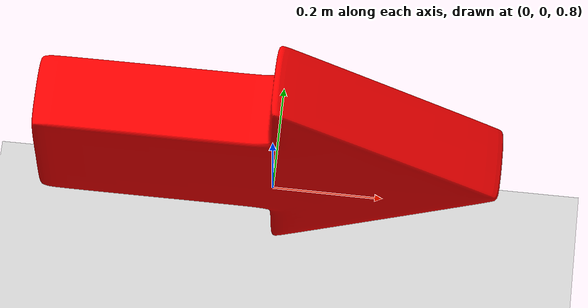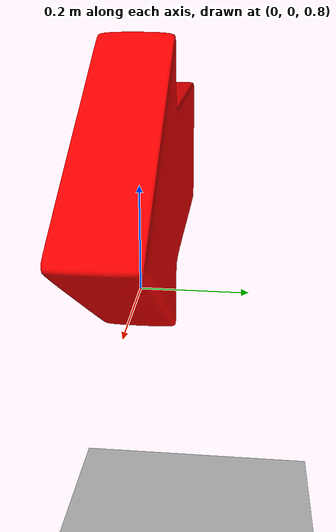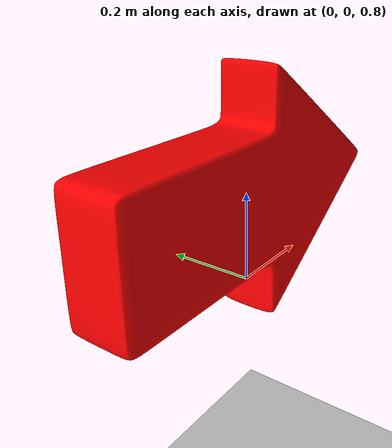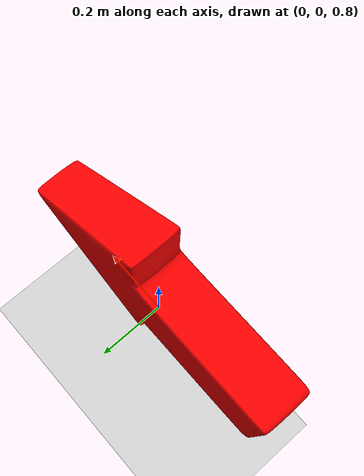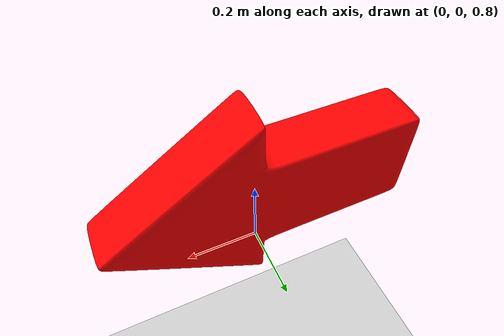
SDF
<?xml version="1.0" ?>
<sdf version="1.5">
  <world name="default">
    <include>
      <uri>model://ground_plane</uri>
    </include>
    <include>
      <uri>model://sun</uri>
    </include>

    <include>
      <uri>model://wind_arrow</uri>
    </include>

  </world>

</sdf>

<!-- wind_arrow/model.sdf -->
<sdf version="1.5">
    <model name="wind_arrow">
      <pose>0 0 1  0 0 0</pose>
      <static>true</static>
      <link name="arrow_body">
        <visual name="visual">
          <geometry>
            <mesh><uri>model://wind_arrow/meshes/arrow.dae</uri></mesh>
          </geometry>

	    <material>
	      <ambient>1 0 0 1</ambient>
	      <diffuse>1 0 0 1</diffuse>
	      <specular>0.1 0.1 0.1 1</specular>
	      <emissive>0 0 0 0</emissive>
	    </material>

        </visual>
      </link>
      <plugin name="wind_arrow" filename="libwind_arrow_model.so" />
    </model>
</sdf>
